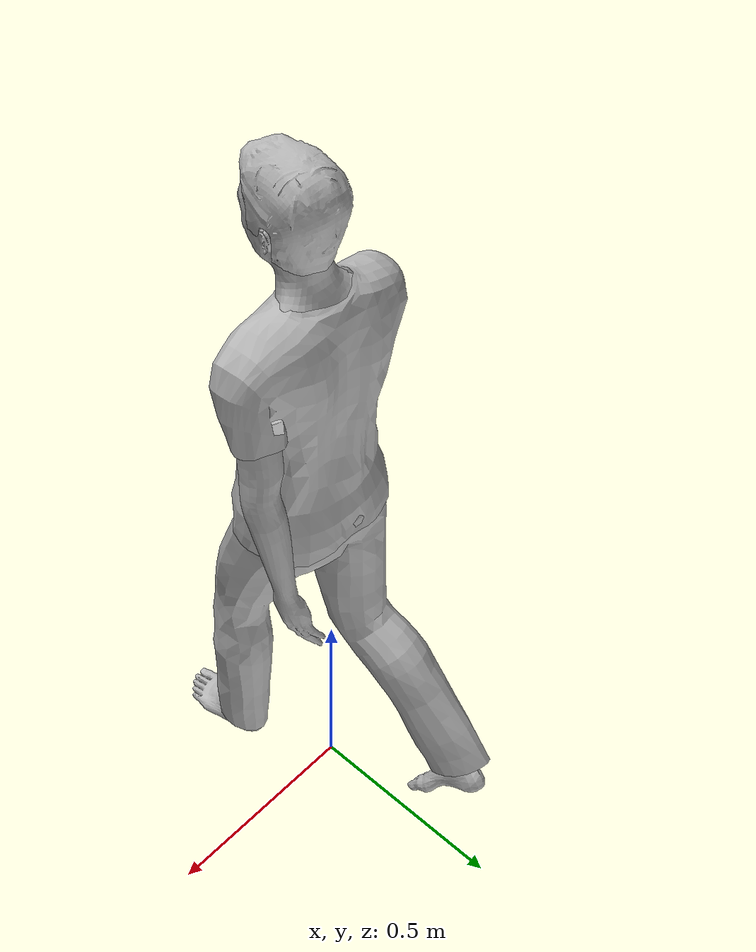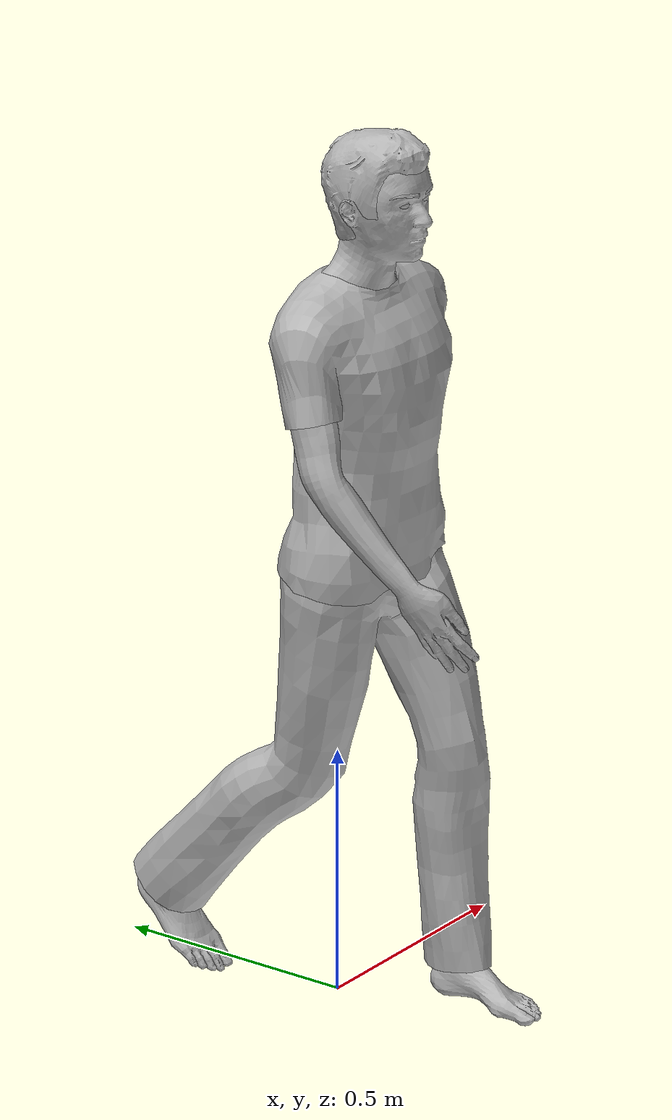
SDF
<?xml version="1.0"?>
<sdf version="1.9">
  <model name="worker">
    <static>true</static>
    <link name="link">
      <collision name="collision"><pose>0 0 0.9 0 0 0</pose><geometry><cylinder><radius>0.30</radius><length>1.8</length></cylinder></geometry></collision>
      <!-- Gazebo Fuel OpenRobotics person (CC0), hi-vis orange clothing (hi_vis_*). -->
      <visual name="mesh_0"><geometry><mesh><uri>meshes/worker_0.obj</uri></mesh></geometry><material><pbr><metal><albedo_map>materials/textures/worker_0.png</albedo_map></metal></pbr></material></visual>
      <visual name="hi_vis_trousers"><geometry><mesh><uri>meshes/worker_1.obj</uri></mesh></geometry><material><pbr><metal><albedo_map>materials/textures/worker_1.png</albedo_map></metal></pbr></material></visual>
      <visual name="hi_vis_top"><geometry><mesh><uri>meshes/worker_2.obj</uri></mesh></geometry><material><pbr><metal><albedo_map>materials/textures/worker_2.png</albedo_map></metal></pbr></material></visual>
      <visual name="mesh_3"><geometry><mesh><uri>meshes/worker_3.obj</uri></mesh></geometry><material><pbr><metal><albedo_map>materials/textures/worker_3.png</albedo_map></metal></pbr></material></visual>
      <visual name="mesh_4"><geometry><mesh><uri>meshes/worker_4.obj</uri></mesh></geometry><material><pbr><metal><albedo_map>materials/textures/worker_4.png</albedo_map></metal></pbr></material></visual>
      <visual name="mesh_5"><geometry><mesh><uri>meshes/worker_5.obj</uri></mesh></geometry><material><pbr><metal><albedo_map>materials/textures/worker_5.png</albedo_map></metal></pbr></material></visual>
      <visual name="mesh_6"><geometry><mesh><uri>meshes/worker_6.obj</uri></mesh></geometry><material><pbr><metal><albedo_map>materials/textures/worker_6.png</albedo_map></metal></pbr></material></visual>
    </link>
  </model>
</sdf>
